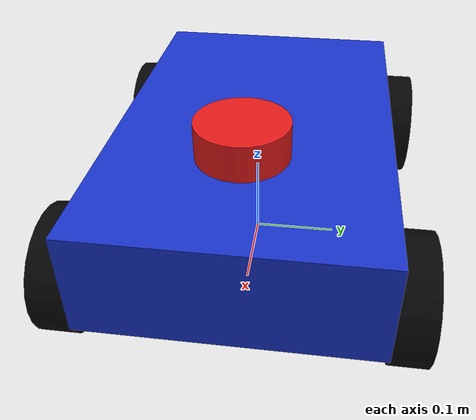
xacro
<?xml version="1.0"?>
<robot name="robot" xmlns:xacro="http://www.ros.org/wiki/xacro">

  <!-- Dimensions -->
  <xacro:property name="base_length" value="0.50"/>
  <xacro:property name="base_width"  value="0.32"/>
  <xacro:property name="base_height" value="0.12"/>

  <xacro:property name="wheel_radius" value="0.07"/>
  <xacro:property name="wheel_width"  value="0.04"/>

  <!-- Ground reference frame -->
  <link name="base_footprint"/>

  <joint name="base_footprint_joint" type="fixed">
    <parent link="base_footprint"/>
    <child link="base_link"/>
    <origin xyz="0 0 ${wheel_radius}" rpy="0 0 0"/>
  </joint>

  <!-- Main robot body -->
  <link name="base_link">
    <visual>
      <origin xyz="0 0 0.04" rpy="0 0 0"/>
      <geometry>
        <box size="${base_length} ${base_width} ${base_height}"/>
      </geometry>
      <material name="blue">
        <color rgba="0.1 0.2 0.8 1.0"/>
      </material>
    </visual>

    <collision>
      <origin xyz="0 0 0.04" rpy="0 0 0"/>
      <geometry>
        <box size="${base_length} ${base_width} ${base_height}"/>
      </geometry>
    </collision>

    <inertial>
      <origin xyz="0 0 0.04" rpy="0 0 0"/>
      <mass value="5.0"/>
      <inertia ixx="0.05" ixy="0.0" ixz="0.0"
               iyy="0.10" iyz="0.0"
               izz="0.10"/>
    </inertial>
  </link>

  <!-- Wheel macro -->
  <xacro:macro name="wheel" params="name x y">
    <link name="${name}_link">
      <visual>
        <!-- Cylinder axis is z by default. Rotate so wheel axle points along y. -->
        <origin xyz="0 0 0" rpy="1.5708 0 0"/>
        <geometry>
          <cylinder radius="${wheel_radius}" length="${wheel_width}"/>
        </geometry>
        <material name="black">
          <color rgba="0.02 0.02 0.02 1.0"/>
        </material>
      </visual>

      <collision>
        <origin xyz="0 0 0" rpy="1.5708 0 0"/>
        <geometry>
          <cylinder radius="${wheel_radius}" length="${wheel_width}"/>
        </geometry>
      </collision>

      <inertial>
        <mass value="0.3"/>
        <inertia ixx="0.0005" ixy="0.0" ixz="0.0"
                 iyy="0.0005" iyz="0.0"
                 izz="0.0005"/>
      </inertial>
    </link>

    <joint name="${name}_joint" type="continuous">
      <parent link="base_link"/>
      <child link="${name}_link"/>
      <origin xyz="${x} ${y} 0" rpy="0 0 0"/>
      <axis xyz="0 1 0"/>
    </joint>
  </xacro:macro>

  <!-- Four wheels -->
  <xacro:wheel name="front_left_wheel"  x="0.18"  y="0.18"/>
  <xacro:wheel name="front_right_wheel" x="0.18"  y="-0.18"/>
  <xacro:wheel name="rear_left_wheel"   x="-0.18" y="0.18"/>
  <xacro:wheel name="rear_right_wheel"  x="-0.18" y="-0.18"/>

  <!-- Lidar -->
  <link name="lidar_link">
    <visual>
      <origin xyz="0 0 0" rpy="0 0 0"/>
      <geometry>
        <cylinder radius="0.05" length="0.04"/>
      </geometry>
      <material name="red">
        <color rgba="0.9 0.1 0.1 1.0"/>
      </material>
    </visual>

    <collision>
      <origin xyz="0 0 0" rpy="0 0 0"/>
      <geometry>
        <cylinder radius="0.05" length="0.04"/>
      </geometry>
    </collision>

    <inertial>
      <mass value="0.2"/>
      <inertia ixx="0.0001" ixy="0.0" ixz="0.0"
               iyy="0.0001" iyz="0.0"
               izz="0.0001"/>
    </inertial>
  </link>

  <joint name="lidar_joint" type="fixed">
    <parent link="base_link"/>
    <child link="lidar_link"/>
    <origin xyz="0.12 0 0.14" rpy="0 0 0"/>
  </joint>

  <!-- Gazebo-specific extensions -->
  <xacro:include filename="robot_gazebo.xacro"/>

</robot>
